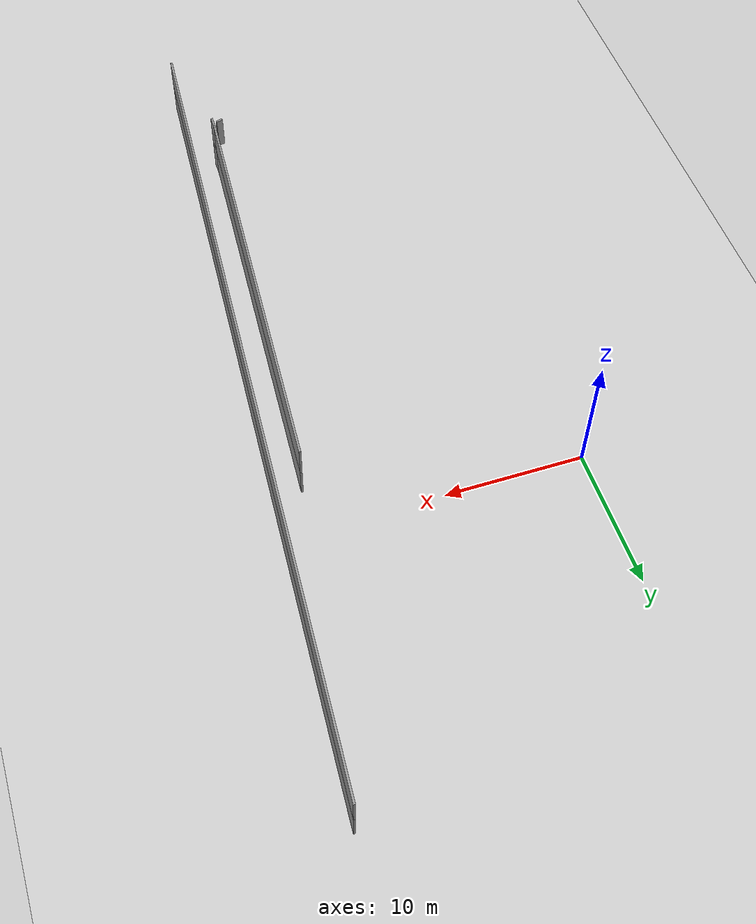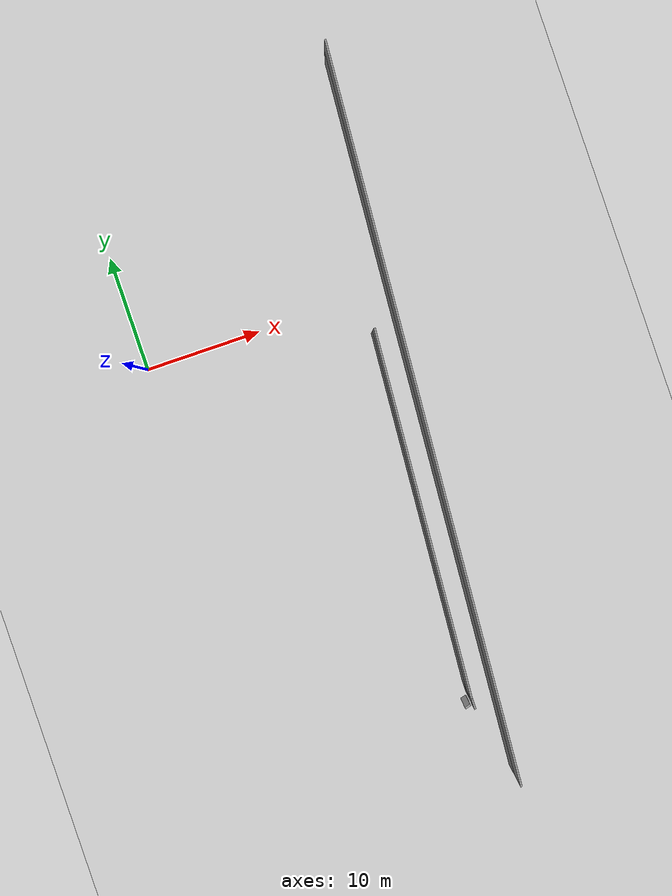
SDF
<sdf version="1.7">
 <world name="default">
  <model name="ground_plane">
   <static>1</static>
   <link name="link">
    <collision name="collision">
     <geometry><plane><normal>0 0 1</normal><size>100 100</size></plane></geometry>
     <surface>
      <contact><collide_bitmask>65535</collide_bitmask></contact>
      <friction><ode><mu>100</mu><mu2>50</mu2></ode></friction>
     </surface>
    </collision>
    <visual name="visual">
     <cast_shadows>0</cast_shadows>
     <geometry><plane><normal>0 0 1</normal><size>100 100</size></plane></geometry>
     <material>
      <script><uri>file://media/materials/scripts/gazebo.material</uri><name>Gazebo/Grey</name></script>
     </material>
    </visual>
   </link>
  </model>
  <model name="EnvDC01">
   <link name="Wall_265">
    <pose>11.4127 -12.3181 2.5 0 0 -1.64406</pose>
    <visual name="Wall_265_Visual">
     <pose>0 0 1.25 0 -0 0</pose>
     <geometry><box><size>30.7553 0.15 2.5</size></box></geometry>
     <material>
      <script><uri>file://media/materials/scripts/gazebo.material</uri><name>Gazebo/Grey</name></script>
      <ambient>1 1 1 1</ambient>
      <shader type="pixel"/>
     </material>
     <meta><layer>1</layer></meta>
    </visual>
    <collision name="Wall_265_Collision">
     <pose>0 0 1.25 0 -0 0</pose>
     <geometry><box><size>30.7553 0.15 2.5</size></box></geometry>
     <surface>
      <friction>
       <ode><mu>1</mu><mu2>1</mu2><fdir1>0 0 0</fdir1><slip1>0</slip1><slip2>0</slip2></ode>
       <torsional>
        <coefficient>1</coefficient>
        <patch_radius>0</patch_radius>
        <surface_radius>0</surface_radius>
        <use_patch_radius>1</use_patch_radius>
        <ode><slip>0</slip></ode>
       </torsional>
      </friction>
      <bounce><restitution_coefficient>0</restitution_coefficient><threshold>1e+06</threshold></bounce>
      <contact>
       <collide_without_contact>0</collide_without_contact>
       <collide_without_contact_bitmask>1</collide_without_contact_bitmask>
       <collide_bitmask>1</collide_bitmask>
       <ode>
        <soft_cfm>0</soft_cfm>
        <soft_erp>0.2</soft_erp>
        <kp>1e+13</kp>
        <kd>1</kd>
        <max_vel>0.01</max_vel>
        <min_depth>0</min_depth>
       </ode>
       <bullet>
        <split_impulse>1</split_impulse>
        <split_impulse_penetration_threshold>-0.01</split_impulse_penetration_threshold>
        <soft_cfm>0</soft_cfm>
        <soft_erp>0.2</soft_erp>
        <kp>1e+13</kp>
        <kd>1</kd>
       </bullet>
      </contact>
     </surface>
    </collision>
   </link>
   <link name="Wall_266">
    <pose>10.2926 -28.0047 2.5 0 0 -1.5708</pose>
    <visual name="Wall_266_Visual">
     <pose>0 0 1.25 0 -0 0</pose>
     <geometry><box><size>1 0.15 2.5</size></box></geometry>
     <material>
      <script><uri>file://media/materials/scripts/gazebo.material</uri><name>Gazebo/Grey</name></script>
      <ambient>1 1 1 1</ambient>
      <shader type="pixel"/>
     </material>
     <meta><layer>1</layer></meta>
    </visual>
    <collision name="Wall_266_Collision">
     <pose>0 0 1.25 0 -0 0</pose>
     <geometry><box><size>1 0.15 2.5</size></box></geometry>
     <surface>
      <friction>
       <ode><mu>1</mu><mu2>1</mu2><fdir1>0 0 0</fdir1><slip1>0</slip1><slip2>0</slip2></ode>
       <torsional>
        <coefficient>1</coefficient>
        <patch_radius>0</patch_radius>
        <surface_radius>0</surface_radius>
        <use_patch_radius>1</use_patch_radius>
        <ode><slip>0</slip></ode>
       </torsional>
      </friction>
      <bounce><restitution_coefficient>0</restitution_coefficient><threshold>1e+06</threshold></bounce>
      <contact>
       <collide_without_contact>0</collide_without_contact>
       <collide_without_contact_bitmask>1</collide_without_contact_bitmask>
       <collide_bitmask>1</collide_bitmask>
       <ode>
        <soft_cfm>0</soft_cfm>
        <soft_erp>0.2</soft_erp>
        <kp>1e+13</kp>
        <kd>1</kd>
        <max_vel>0.01</max_vel>
        <min_depth>0</min_depth>
       </ode>
       <bullet>
        <split_impulse>1</split_impulse>
        <split_impulse_penetration_threshold>-0.01</split_impulse_penetration_threshold>
        <soft_cfm>0</soft_cfm>
        <soft_erp>0.2</soft_erp>
        <kp>1e+13</kp>
        <kd>1</kd>
       </bullet>
      </contact>
     </surface>
    </collision>
   </link>
   <link name="Wall_268">
    <pose>14.0288 -4.70516 2.5 0 -0 1.49799</pose>
    <visual name="Wall_268_Visual">
     <pose>0 0 1.25 0 -0 0</pose>
     <geometry><box><size>61.9334 0.15 2.5</size></box></geometry>
     <material>
      <script><uri>file://media/materials/scripts/gazebo.material</uri><name>Gazebo/Grey</name></script>
      <ambient>1 1 1 1</ambient>
      <shader type="pixel"/>
     </material>
     <meta><layer>1</layer></meta>
    </visual>
    <collision name="Wall_268_Collision">
     <pose>0 0 1.25 0 -0 0</pose>
     <geometry><box><size>61.9334 0.15 2.5</size></box></geometry>
     <surface>
      <friction>
       <ode><mu>1</mu><mu2>1</mu2><fdir1>0 0 0</fdir1><slip1>0</slip1><slip2>0</slip2></ode>
       <torsional>
        <coefficient>1</coefficient>
        <patch_radius>0</patch_radius>
        <surface_radius>0</surface_radius>
        <use_patch_radius>1</use_patch_radius>
        <ode><slip>0</slip></ode>
       </torsional>
      </friction>
      <bounce><restitution_coefficient>0</restitution_coefficient><threshold>1e+06</threshold></bounce>
      <contact>
       <collide_without_contact>0</collide_without_contact>
       <collide_without_contact_bitmask>1</collide_without_contact_bitmask>
       <collide_bitmask>1</collide_bitmask>
       <ode>
        <soft_cfm>0</soft_cfm>
        <soft_erp>0.2</soft_erp>
        <kp>1e+13</kp>
        <kd>1</kd>
        <max_vel>0.01</max_vel>
        <min_depth>0</min_depth>
       </ode>
       <bullet>
        <split_impulse>1</split_impulse>
        <split_impulse_penetration_threshold>-0.01</split_impulse_penetration_threshold>
        <soft_cfm>0</soft_cfm>
        <soft_erp>0.2</soft_erp>
        <kp>1e+13</kp>
        <kd>1</kd>
       </bullet>
      </contact>
     </surface>
    </collision>
   </link>
   <link name="Wall_378">
    <pose>9.79108 -28.1072 2.5 0 -0 0.261799</pose>
    <visual name="Wall_378_Visual">
     <pose>0 0 1.25 0 -0 0</pose>
     <geometry><box><size>0.5 0.15 2.5</size></box></geometry>
     <material>
      <script><uri>file://media/materials/scripts/gazebo.material</uri><name>Gazebo/Grey</name></script>
      <ambient>1 1 1 1</ambient>
      <shader type="pixel"/>
     </material>
     <meta><layer>1</layer></meta>
    </visual>
    <collision name="Wall_378_Collision">
     <pose>0 0 1.25 0 -0 0</pose>
     <geometry><box><size>0.5 0.15 2.5</size></box></geometry>
     <surface>
      <friction>
       <ode><mu>1</mu><mu2>1</mu2><fdir1>0 0 0</fdir1><slip1>0</slip1><slip2>0</slip2></ode>
       <torsional>
        <coefficient>1</coefficient>
        <patch_radius>0</patch_radius>
        <surface_radius>0</surface_radius>
        <use_patch_radius>1</use_patch_radius>
        <ode><slip>0</slip></ode>
       </torsional>
      </friction>
      <bounce><restitution_coefficient>0</restitution_coefficient><threshold>1e+06</threshold></bounce>
      <contact>
       <collide_without_contact>0</collide_without_contact>
       <collide_without_contact_bitmask>1</collide_without_contact_bitmask>
       <collide_bitmask>1</collide_bitmask>
       <ode>
        <soft_cfm>0</soft_cfm>
        <soft_erp>0.2</soft_erp>
        <kp>1e+13</kp>
        <kd>1</kd>
        <max_vel>0.01</max_vel>
        <min_depth>0</min_depth>
       </ode>
       <bullet>
        <split_impulse>1</split_impulse>
        <split_impulse_penetration_threshold>-0.01</split_impulse_penetration_threshold>
        <soft_cfm>0</soft_cfm>
        <soft_erp>0.2</soft_erp>
        <kp>1e+13</kp>
        <kd>1</kd>
       </bullet>
      </contact>
     </surface>
    </collision>
   </link>
   <link name="Wall_40">
    <pose>11.4127 -12.3181 0 0 0 -1.64406</pose>
    <visual name="Wall_40_Visual">
     <pose>0 0 1.25 0 -0 0</pose>
     <geometry><box><size>30.7553 0.15 2.5</size></box></geometry>
     <material>
      <script><uri>file://media/materials/scripts/gazebo.material</uri><name>Gazebo/Grey</name></script>
      <ambient>1 1 1 1</ambient>
      <shader type="pixel"/>
     </material>
     <meta><layer>0</layer></meta>
    </visual>
    <collision name="Wall_40_Collision">
     <pose>0 0 1.25 0 -0 0</pose>
     <geometry><box><size>30.7553 0.15 2.5</size></box></geometry>
     <surface>
      <friction>
       <ode><mu>1</mu><mu2>1</mu2><fdir1>0 0 0</fdir1><slip1>0</slip1><slip2>0</slip2></ode>
       <torsional>
        <coefficient>1</coefficient>
        <patch_radius>0</patch_radius>
        <surface_radius>0</surface_radius>
        <use_patch_radius>1</use_patch_radius>
        <ode><slip>0</slip></ode>
       </torsional>
      </friction>
      <bounce><restitution_coefficient>0</restitution_coefficient><threshold>1e+06</threshold></bounce>
      <contact>
       <collide_without_contact>0</collide_without_contact>
       <collide_without_contact_bitmask>1</collide_without_contact_bitmask>
       <collide_bitmask>1</collide_bitmask>
       <ode>
        <soft_cfm>0</soft_cfm>
        <soft_erp>0.2</soft_erp>
        <kp>1e+13</kp>
        <kd>1</kd>
        <max_vel>0.01</max_vel>
        <min_depth>0</min_depth>
       </ode>
       <bullet>
        <split_impulse>1</split_impulse>
        <split_impulse_penetration_threshold>-0.01</split_impulse_penetration_threshold>
        <soft_cfm>0</soft_cfm>
        <soft_erp>0.2</soft_erp>
        <kp>1e+13</kp>
        <kd>1</kd>
       </bullet>
      </contact>
     </surface>
    </collision>
   </link>
   <link name="Wall_41">
    <pose>10.2926 -28.0047 0 0 0 -1.5708</pose>
    <visual name="Wall_41_Visual">
     <pose>0 0 1.25 0 -0 0</pose>
     <geometry><box><size>1 0.15 2.5</size></box></geometry>
     <material>
      <script><uri>file://media/materials/scripts/gazebo.material</uri><name>Gazebo/Grey</name></script>
      <ambient>1 1 1 1</ambient>
      <shader type="pixel"/>
     </material>
     <meta><layer>0</layer></meta>
    </visual>
    <collision name="Wall_41_Collision">
     <pose>0 0 1.25 0 -0 0</pose>
     <geometry><box><size>1 0.15 2.5</size></box></geometry>
     <surface>
      <friction>
       <ode><mu>1</mu><mu2>1</mu2><fdir1>0 0 0</fdir1><slip1>0</slip1><slip2>0</slip2></ode>
       <torsional>
        <coefficient>1</coefficient>
        <patch_radius>0</patch_radius>
        <surface_radius>0</surface_radius>
        <use_patch_radius>1</use_patch_radius>
        <ode><slip>0</slip></ode>
       </torsional>
      </friction>
      <bounce><restitution_coefficient>0</restitution_coefficient><threshold>1e+06</threshold></bounce>
      <contact>
       <collide_without_contact>0</collide_without_contact>
       <collide_without_contact_bitmask>1</collide_without_contact_bitmask>
       <collide_bitmask>1</collide_bitmask>
       <ode>
        <soft_cfm>0</soft_cfm>
        <soft_erp>0.2</soft_erp>
        <kp>1e+13</kp>
        <kd>1</kd>
        <max_vel>0.01</max_vel>
        <min_depth>0</min_depth>
       </ode>
       <bullet>
        <split_impulse>1</split_impulse>
        <split_impulse_penetration_threshold>-0.01</split_impulse_penetration_threshold>
        <soft_cfm>0</soft_cfm>
        <soft_erp>0.2</soft_erp>
        <kp>1e+13</kp>
        <kd>1</kd>
       </bullet>
      </contact>
     </surface>
    </collision>
   </link>
   <link name="Wall_44">
    <pose>14.0288 -4.70516 0 0 -0 1.49799</pose>
    <visual name="Wall_44_Visual">
     <pose>0 0 1.25 0 -0 0</pose>
     <geometry><box><size>61.9334 0.15 2.5</size></box></geometry>
     <material>
      <script><uri>file://media/materials/scripts/gazebo.material</uri><name>Gazebo/Grey</name></script>
      <ambient>1 1 1 1</ambient>
      <shader type="pixel"/>
     </material>
     <meta><layer>0</layer></meta>
    </visual>
    <collision name="Wall_44_Collision">
     <pose>0 0 1.25 0 -0 0</pose>
     <geometry><box><size>61.9334 0.15 2.5</size></box></geometry>
     <surface>
      <friction>
       <ode><mu>1</mu><mu2>1</mu2><fdir1>0 0 0</fdir1><slip1>0</slip1><slip2>0</slip2></ode>
       <torsional>
        <coefficient>1</coefficient>
        <patch_radius>0</patch_radius>
        <surface_radius>0</surface_radius>
        <use_patch_radius>1</use_patch_radius>
        <ode><slip>0</slip></ode>
       </torsional>
      </friction>
      <bounce><restitution_coefficient>0</restitution_coefficient><threshold>1e+06</threshold></bounce>
      <contact>
       <collide_without_contact>0</collide_without_contact>
       <collide_without_contact_bitmask>1</collide_without_contact_bitmask>
       <collide_bitmask>1</collide_bitmask>
       <ode>
        <soft_cfm>0</soft_cfm>
        <soft_erp>0.2</soft_erp>
        <kp>1e+13</kp>
        <kd>1</kd>
        <max_vel>0.01</max_vel>
        <min_depth>0</min_depth>
       </ode>
       <bullet>
        <split_impulse>1</split_impulse>
        <split_impulse_penetration_threshold>-0.01</split_impulse_penetration_threshold>
        <soft_cfm>0</soft_cfm>
        <soft_erp>0.2</soft_erp>
        <kp>1e+13</kp>
        <kd>1</kd>
       </bullet>
      </contact>
     </surface>
    </collision>
   </link>
   <static>1</static>
   <pose>6.55365 -6.2466 0 0 -0 0</pose>
  </model>
 </world>
</sdf>
